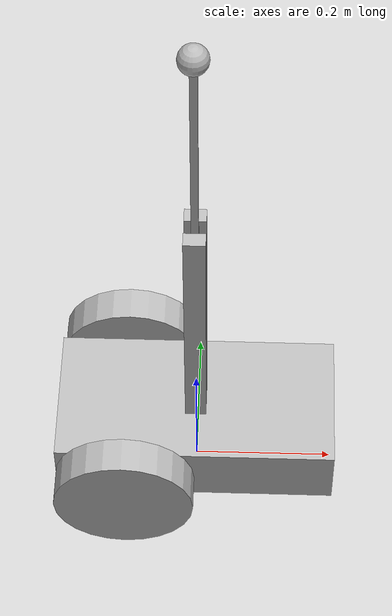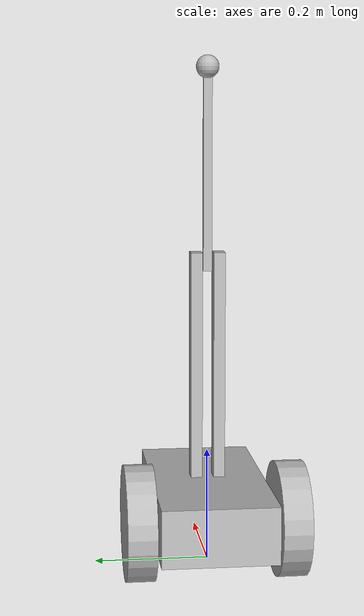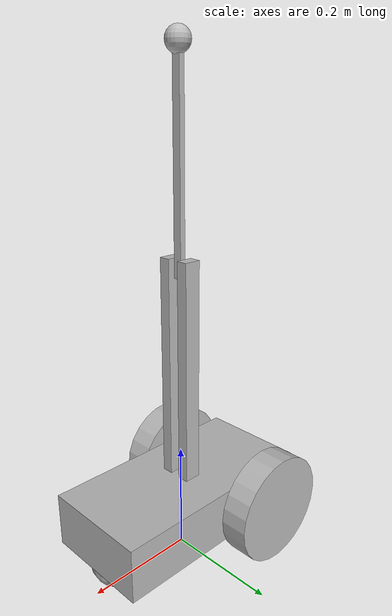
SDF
<?xml version="1.0"?>
<sdf version="1.5">
<model name="InvPendOneDeg">
    <static>false</static>

    <link name="base">
        <pose>0 0 0.1 0 0 0</pose>
        <inertial>
            <mass>30</mass>
        </inertial>

        <sensor type="imu" name="imu">
            <always_on>true</always_on>
            <update_rate>100</update_rate>
            <visualize>true</visualize>
            <imu>
                <noise>
                    <type>gaussian</type>
                    <rate>
                        <mean>0.0</mean>
                        <stddev>1.96e-06</stddev>
                        <bias_mean>0.0</bias_mean>
                        <bias_stddev>0.0</bias_stddev>
                    </rate>
                    <accel>
                        <mean>0.0</mean>
                        <stddev>1.7e-2</stddev>
                        <bias_mean>0.1</bias_mean>
                        <bias_stddev>0.001</bias_stddev>
                    </accel>
                </noise>
            </imu>
        </sensor>

        <collision name="base_collision">
            <geometry>
                <box>
                    <size>0.4 0.2 0.1</size>
                </box>
            </geometry>
        </collision>
        <visual name="base_visual">
            <geometry>
                <box>
                    <size>0.4 0.2 0.1</size>
                </box>
            </geometry>
        </visual>

        <collision name="base_ball_collision">
            <pose>0.15 0 -0.05 0 0 0</pose>
            <geometry>
                <sphere>
                    <radius>0.05</radius>
                </sphere>
            </geometry>
            <surface>
                <friction>
                    <ode>
                        <mu>0</mu>
                        <mu2>0</mu2>
                        <slip1>1.0</slip1>
                        <slip2>1.0</slip2>
                    </ode>
                </friction>
            </surface>
        </collision>

        <visual name="base_ball_visual">
            <pose>0.15 0 -0.05 0 0 0</pose>
            <geometry>
                <sphere>
                    <radius>0.05</radius>
                </sphere>
            </geometry>
        </visual>
    </link>

    <link name="left_wheel">
        <pose>-0.1 0.13 0.1 -1.5707 0 0</pose>
        <inertial>
            <mass>10</mass>
        </inertial>

        <collision name="left_wheel_collision">
            <geometry>
                <cylinder>
                    <radius>0.1</radius>
                    <length>0.05</length>
                </cylinder>
            </geometry>
        </collision>
        <visual name="left_wheeel_visual">
            <geometry>
                <cylinder>
                    <radius>0.1</radius>
                    <length>0.05</length>
                </cylinder>
            </geometry>
        </visual>
    </link>

    <link name="right_wheel">
        <pose>-0.1 -0.13 0.1 -1.5707 0 0</pose>
        <inertial>
            <mass>10</mass>
        </inertial>

        <collision name="right_wheel_collision">
            <geometry>
                <cylinder>
                    <radius>0.1</radius>
                    <length>0.05</length>
                </cylinder>
            </geometry>
        </collision>
        <visual name="right_wheeel_visual">
            <geometry>
                <cylinder>
                    <radius>0.1</radius>
                    <length>0.05</length>
                </cylinder>
            </geometry>
        </visual>
    </link>

    <joint type="revolute" name="base_2_left_wheel">
        <parent>base</parent>
        <child>left_wheel</child>
        <axis>
            <xyz>0 0 1</xyz>
        </axis>
    </joint>

    <joint type="revolute" name="base_2_right_wheel">
        <parent>base</parent>
        <child>right_wheel</child>
        <axis>
            <xyz>0 0 1</xyz>
        </axis>
    </joint>

    <link name="invpend_base">
        <pose>0.0 0 0.353 0 0 0</pose>
        <inertial>
            <mass>10</mass>
        </inertial>
        <collision name="invpend_base_collision_1">
            <pose>0.0 0.02 0.0 0 0 0</pose>
            <geometry>
                <box>
                    <size>0.03 0.02 0.4</size>
                </box>
            </geometry>
        </collision>
        <visual name="invpend_base_visual_1">
            <pose>0.0 0.02 0.0 0 0 0</pose>
            <geometry>
                <box>
                    <size>0.03 0.02 0.4</size>
                </box>
            </geometry>
        </visual>
        <collision name="invpend_base_collision_2">
            <pose>0.0 -0.02 0.0 0 0 0</pose>
            <geometry>
                <box>
                    <size>0.03 0.02 0.4</size>
                </box>
            </geometry>
        </collision>
        <visual name="invpend_base_visual_2">
            <pose>0.0 -0.02 0.0 0 0 0</pose>
            <geometry>
                <box>
                    <size>0.03 0.02 0.4</size>
                </box>
            </geometry>
        </visual>
    </link>

    <joint type="fixed" name="base_2_invpend_base">
        <parent>base</parent>
        <child>invpend_base</child>
    </joint>

    <link name="invpend_pend">
        <pose>0.0 0 0.695 0 0 0</pose>
        <inertial>
            <mass>0.01</mass>
        </inertial>
        <collision name="invpend_base_collision">
            <geometry>
                <box>
                    <size>0.01 0.015 0.35</size>
                </box>
            </geometry>
        </collision>
        <visual name="invpend_base_visual">
            <geometry>
                <box>
                    <size>0.01 0.015 0.35</size>
                </box>
            </geometry>
        </visual>
    </link>

    <link name="invpend_weight">
        <pose>0.0 0 0.87 0 0 0</pose>
        <inertial>
            <mass>10</mass>
        </inertial>
        <collision name="invpend_weight_collision">
            <geometry>
                <sphere>
                    <radius>0.02</radius>
                </sphere>
            </geometry>
        </collision>
        <visual name="invpend_weight_visual">
            <geometry>
                <sphere>
                    <radius>0.02</radius>
                </sphere>
            </geometry>
        </visual>
    </link>

    <joint type="fixed" name="invpend_pend_2_invpend_weight">
        <parent>invpend_pend</parent>
        <child>invpend_weight</child>
    </joint>

    <joint type="revolute" name="invpend_base_2_invpend_pend">
        <parent>invpend_base</parent>
        <child>invpend_pend</child>
        <pose>0 0 -0.175 0 0 0</pose>
        <axis>
            <xyz>0 1 0</xyz>
            <dynamics>
                <friction>0.1</friction>
            </dynamics>
        </axis>
    </joint>

</model>
</sdf>
